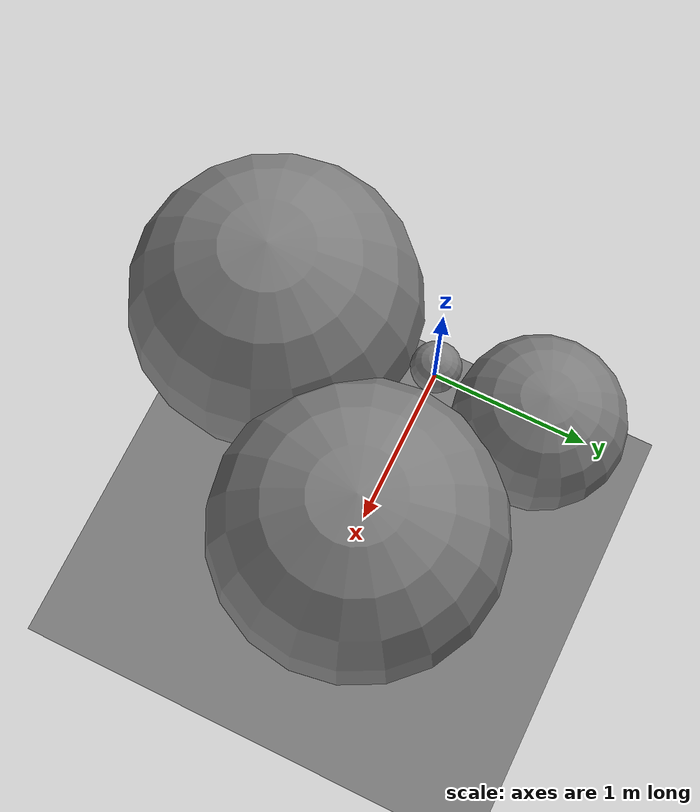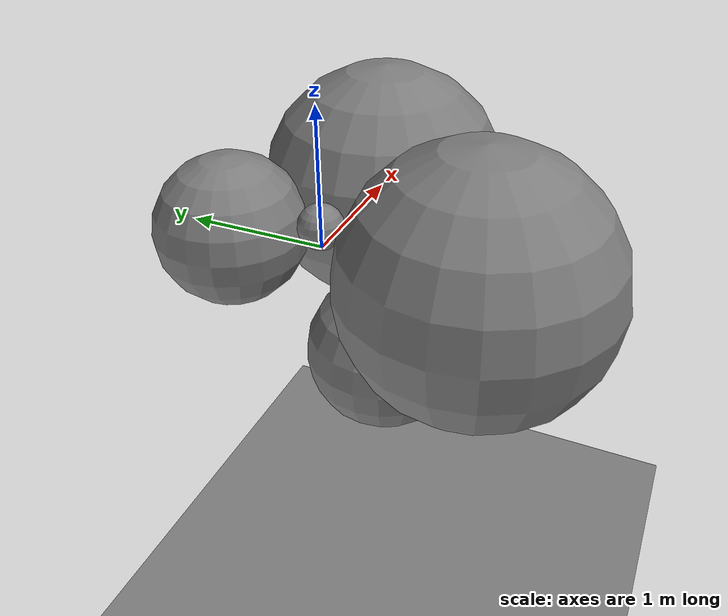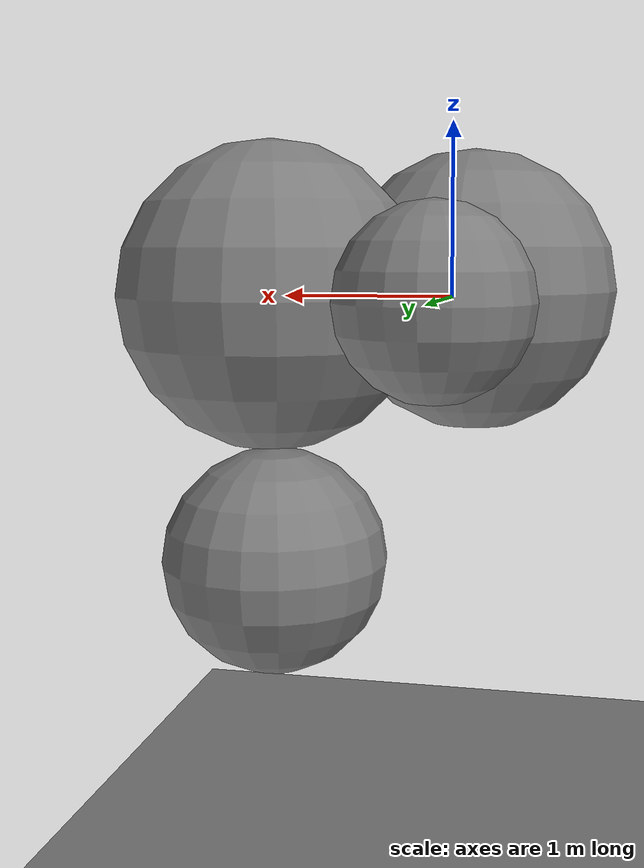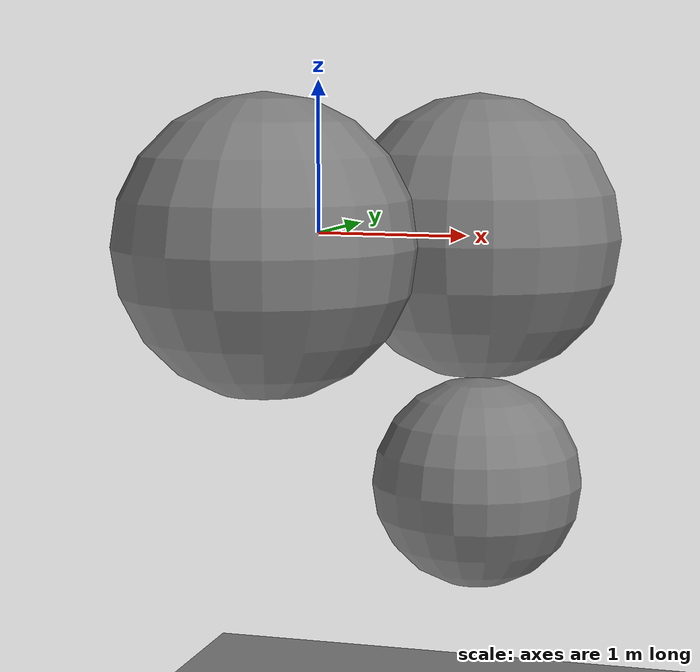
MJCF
<mujoco model="unnamed_model">
  <default>
    <default class="/"/>
  </default>
  <worldbody>
    <geom name="//unnamed_geom_0" class="/" type="plane" size="100 100 0.10000000000000001" pos="0 0 -3.2997274786730646"/>
    <body name="body0" pos="0 0 0">
      <joint name="//unnamed_joint_0" class="/" type="free"/>
      <geom name="//unnamed_geom_1" class="/" type="sphere" size="0.15849821030498257 0.15849821030498257 0.15849821030498257" pos="0 0 0.15849821030498257"/>
      <body name="body1" pos="0 0.69971761403565857 0">
        <geom name="//unnamed_geom_2" class="/" type="sphere" size="0.54121940373067601 0.54121940373067601 0.54121940373067601"/>
        <joint name="//unnamed_joint_1" class="/" type="hinge" axis="0 1 0"/>
      </body>
      <body name="body2" pos="0 -1.0923782632524839 0">
        <geom name="//unnamed_geom_3" class="/" type="sphere" size="0.9338800529475012 0.9338800529475012 0.9338800529475012"/>
        <joint name="//unnamed_joint_2" class="/" type="ball" axis="0 -1 0"/>
      </body>
      <body name="body3" pos="1.0804762540317459 0 0">
        <geom name="//unnamed_geom_4" class="/" type="sphere" size="0.92197804372676329 0.92197804372676329 0.92197804372676329"/>
        <joint name="//unnamed_joint_3" class="/" type="hinge" axis="1 0 0"/>
        <body name="body4" pos="0 0 -1.6108527611999139">
          <geom name="//unnamed_geom_5" class="/" type="sphere" size="0.68887471747315066 0.68887471747315066 0.68887471747315066"/>
          <joint name="//unnamed_joint_4" class="/" type="ball" axis="0 0 -1"/>
        </body>
      </body>
    </body>
  </worldbody>
  <actuator>
    <motor name="//unnamed_actuator_0" class="/" ctrllimited="true" ctrlrange="-1 1" joint="//unnamed_joint_0"/>
    <motor name="//unnamed_actuator_1" class="/" ctrllimited="true" ctrlrange="-1 1" joint="//unnamed_joint_1"/>
    <motor name="//unnamed_actuator_2" class="/" ctrllimited="true" ctrlrange="-1 1" joint="//unnamed_joint_2"/>
    <motor name="//unnamed_actuator_3" class="/" ctrllimited="true" ctrlrange="-1 1" joint="//unnamed_joint_3"/>
    <motor name="//unnamed_actuator_4" class="/" ctrllimited="true" ctrlrange="-1 1" joint="//unnamed_joint_4"/>
  </actuator>
</mujoco>
